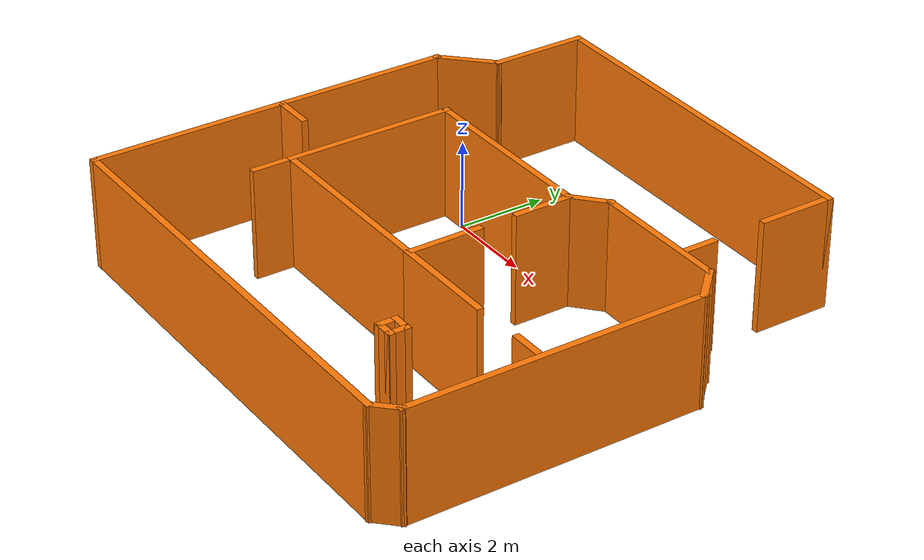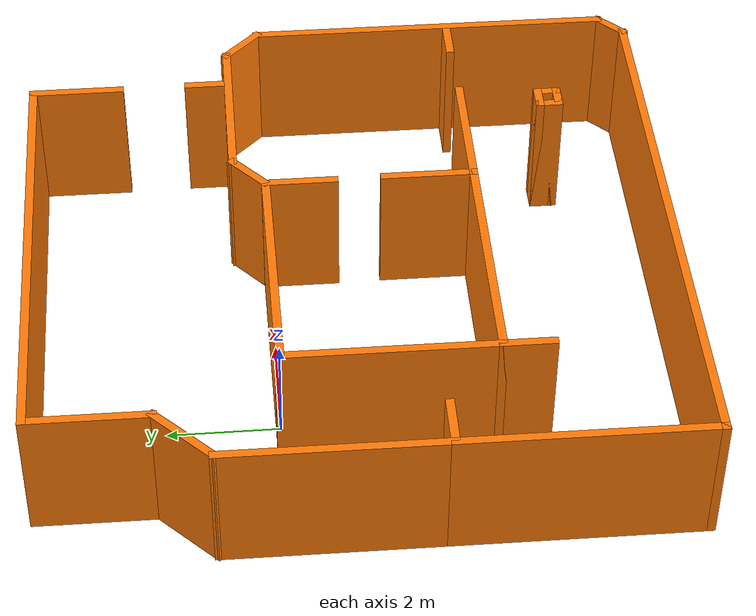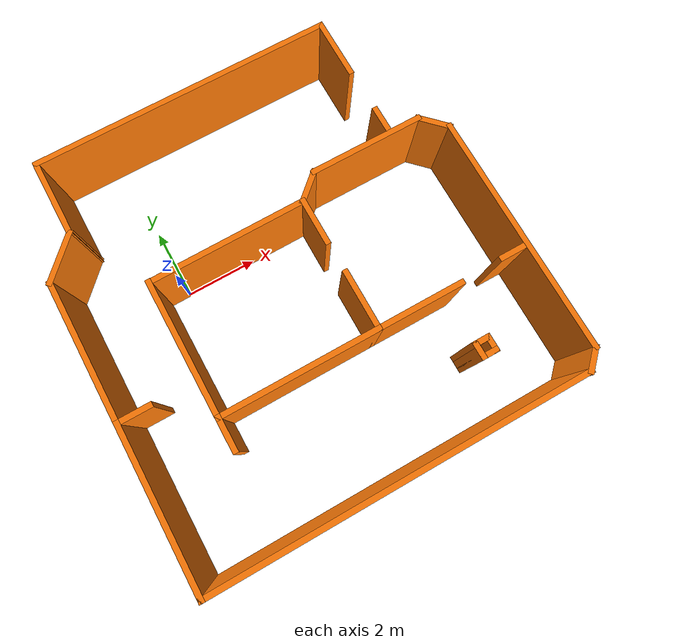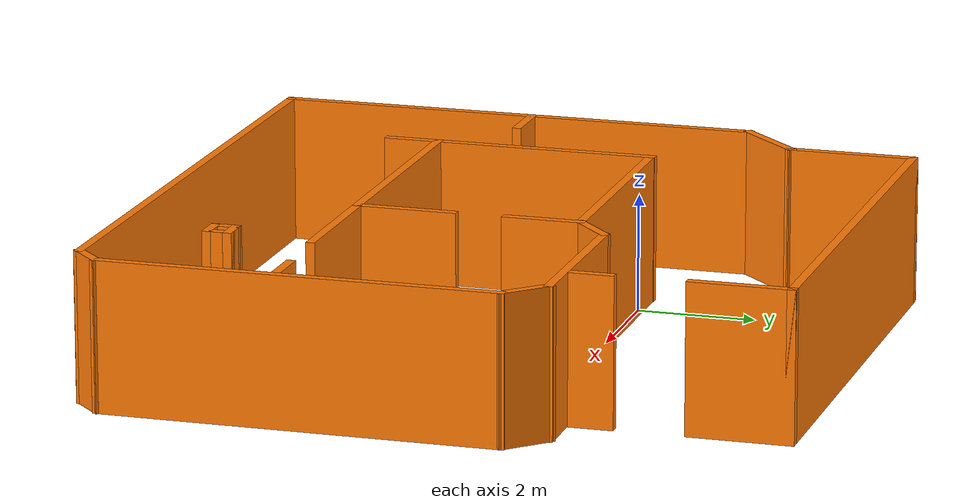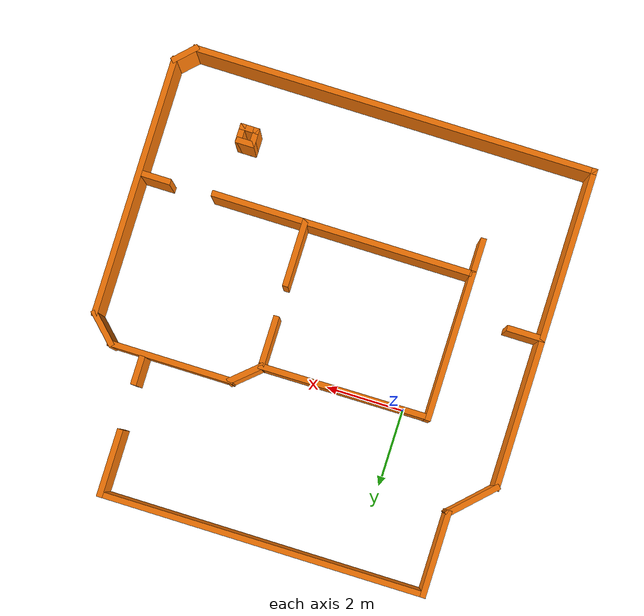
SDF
<?xml version='1.0'?>
<sdf version='1.7'>
  <model name='tinyHouse'>
    <pose>2.62495 -1.4125 0 0 -0 0</pose>
    <link name='Wall_10'>
      <collision name='Wall_10_Collision'>
        <geometry>
          <box>
            <size>0.75 0.15 2.5</size>
          </box>
        </geometry>
        <pose>0 0 1.25 0 -0 0</pose>
      </collision>
      <visual name='Wall_10_Visual'>
        <pose>0 0 1.25 0 -0 0</pose>
        <geometry>
          <box>
            <size>0.75 0.15 2.5</size>
          </box>
        </geometry>
        <material>
          <script>
            <uri>file://media/materials/scripts/gazebo.material</uri>
            <name>Gazebo/Grey</name>
          </script>
          <ambient>0.996078 0.47451 0.0196078 1</ambient>
        </material>
        <meta>
          <layer>0</layer>
        </meta>
      </visual>
      <pose>5.175 -5.39963 0 0 -0 -2.35619</pose>
    </link>
    <link name='Wall_11'>
      <collision name='Wall_11_Collision'>
        <geometry>
          <box>
            <size>10.5 0.15 2.5</size>
          </box>
        </geometry>
        <pose>0 0 1.25 0 -0 0</pose>
      </collision>
      <visual name='Wall_11_Visual'>
        <pose>0 0 1.25 0 -0 0</pose>
        <geometry>
          <box>
            <size>10.5 0.15 2.5</size>
          </box>
        </geometry>
        <material>
          <script>
            <uri>file://media/materials/scripts/gazebo.material</uri>
            <name>Gazebo/Grey</name>
          </script>
          <ambient>0.996078 0.47451 0.0196078 1</ambient>
        </material>
        <meta>
          <layer>0</layer>
        </meta>
      </visual>
      <pose>-0.212132 -5.61176 0 0 -0 3.14159</pose>
    </link>
    <link name='Wall_12'>
      <collision name='Wall_12_Collision'>
        <geometry>
          <box>
            <size>4.5 0.15 2.5</size>
          </box>
        </geometry>
        <pose>0 0 1.25 0 -0 0</pose>
      </collision>
      <visual name='Wall_12_Visual'>
        <pose>0 0 1.25 0 -0 0</pose>
        <geometry>
          <box>
            <size>4.5 0.15 2.5</size>
          </box>
        </geometry>
        <material>
          <script>
            <uri>file://media/materials/scripts/gazebo.material</uri>
            <name>Gazebo/Grey</name>
          </script>
          <ambient>0.996078 0.47451 0.0196078 1</ambient>
        </material>
        <meta>
          <layer>0</layer>
        </meta>
      </visual>
      <pose>-5.38713 -3.43676 0 0 -0 1.5708</pose>
    </link>
    <link name='Wall_13'>
      <collision name='Wall_13_Collision'>
        <geometry>
          <box>
            <size>1 0.15 2.5</size>
          </box>
        </geometry>
        <pose>0 0 1.25 0 -0 0</pose>
      </collision>
      <visual name='Wall_13_Visual'>
        <pose>0 0 1.25 0 -0 0</pose>
        <geometry>
          <box>
            <size>1 0.15 2.5</size>
          </box>
        </geometry>
        <material>
          <script>
            <uri>file://media/materials/scripts/gazebo.material</uri>
            <name>Gazebo/Grey</name>
          </script>
          <ambient>0.996078 0.47451 0.0196078 1</ambient>
        </material>
        <meta>
          <layer>0</layer>
        </meta>
      </visual>
      <pose>-4.96213 -1.26176 0 0 -0 0</pose>
    </link>
    <link name='Wall_18'>
      <collision name='Wall_18_Collision'>
        <geometry>
          <box>
            <size>0.5 0.15 2.5</size>
          </box>
        </geometry>
        <pose>0 0 1.25 0 -0 0</pose>
      </collision>
      <visual name='Wall_18_Visual'>
        <pose>0 0 1.25 0 -0 0</pose>
        <geometry>
          <box>
            <size>0.5 0.15 2.5</size>
          </box>
        </geometry>
        <material>
          <script>
            <uri>file://media/materials/scripts/gazebo.material</uri>
            <name>Gazebo/Grey</name>
          </script>
          <ambient>0.996078 0.47451 0.0196078 1</ambient>
        </material>
        <meta>
          <layer>0</layer>
        </meta>
      </visual>
      <pose>2.917 -3.91199 0 0 -0 -1.5708</pose>
    </link>
    <link name='Wall_19'>
      <collision name='Wall_19_Collision'>
        <geometry>
          <box>
            <size>0.5 0.15 2.5</size>
          </box>
        </geometry>
        <pose>0 0 1.25 0 -0 0</pose>
      </collision>
      <visual name='Wall_19_Visual'>
        <pose>0 0 1.25 0 -0 0</pose>
        <geometry>
          <box>
            <size>0.5 0.15 2.5</size>
          </box>
        </geometry>
        <material>
          <script>
            <uri>file://media/materials/scripts/gazebo.material</uri>
            <name>Gazebo/Grey</name>
          </script>
          <ambient>0.996078 0.47451 0.0196078 1</ambient>
        </material>
        <meta>
          <layer>0</layer>
        </meta>
      </visual>
      <pose>3.092 -4.08699 0 0 -0 0</pose>
    </link>
    <link name='Wall_2'>
      <collision name='Wall_2_Collision'>
        <geometry>
          <box>
            <size>4.5 0.15 2.5</size>
          </box>
        </geometry>
        <pose>0 0 1.25 0 -0 0</pose>
      </collision>
      <visual name='Wall_2_Visual'>
        <pose>0 0 1.25 0 -0 0</pose>
        <geometry>
          <box>
            <size>4.5 0.15 2.5</size>
          </box>
        </geometry>
        <material>
          <script>
            <uri>file://media/materials/scripts/gazebo.material</uri>
            <name>Gazebo/Grey</name>
          </script>
          <ambient>0.996078 0.47451 0.0196078 1</ambient>
        </material>
        <meta>
          <layer>0</layer>
        </meta>
      </visual>
      <pose>-1.08995 -2.2875 0 0 -0 0</pose>
    </link>
    <link name='Wall_20'>
      <collision name='Wall_20_Collision'>
        <geometry>
          <box>
            <size>0.5 0.15 2.5</size>
          </box>
        </geometry>
        <pose>0 0 1.25 0 -0 0</pose>
      </collision>
      <visual name='Wall_20_Visual'>
        <pose>0 0 1.25 0 -0 0</pose>
        <geometry>
          <box>
            <size>0.5 0.15 2.5</size>
          </box>
        </geometry>
        <material>
          <script>
            <uri>file://media/materials/scripts/gazebo.material</uri>
            <name>Gazebo/Grey</name>
          </script>
          <ambient>0.996078 0.47451 0.0196078 1</ambient>
        </material>
        <meta>
          <layer>0</layer>
        </meta>
      </visual>
      <pose>3.267 -3.91199 0 0 -0 1.5708</pose>
    </link>
    <link name='Wall_21'>
      <collision name='Wall_21_Collision'>
        <geometry>
          <box>
            <size>0.5 0.15 2.5</size>
          </box>
        </geometry>
        <pose>0 0 1.25 0 -0 0</pose>
      </collision>
      <visual name='Wall_21_Visual'>
        <pose>0 0 1.25 0 -0 0</pose>
        <geometry>
          <box>
            <size>0.5 0.15 2.5</size>
          </box>
        </geometry>
        <material>
          <script>
            <uri>file://media/materials/scripts/gazebo.material</uri>
            <name>Gazebo/Grey</name>
          </script>
          <ambient>0.996078 0.47451 0.0196078 1</ambient>
        </material>
        <meta>
          <layer>0</layer>
        </meta>
      </visual>
      <pose>3.092 -3.73699 0 0 -0 3.14159</pose>
    </link>
    <link name='Wall_23'>
      <collision name='Wall_23_Collision'>
        <geometry>
          <box>
            <size>1 0.15 2.5</size>
          </box>
        </geometry>
        <pose>0 0 1.25 0 -0 0</pose>
      </collision>
      <visual name='Wall_23_Visual'>
        <pose>0 0 1.25 0 -0 0</pose>
        <geometry>
          <box>
            <size>1 0.15 2.5</size>
          </box>
        </geometry>
        <material>
          <script>
            <uri>file://media/materials/scripts/gazebo.material</uri>
            <name>Gazebo/Grey</name>
          </script>
          <ambient>0.996078 0.47451 0.0196078 1</ambient>
        </material>
        <meta>
          <layer>0</layer>
        </meta>
      </visual>
      <pose>-3.26495 -2.7125 0 0 -0 -1.5708</pose>
    </link>
    <link name='Wall_25'>
      <collision name='Wall_25_Collision'>
        <geometry>
          <box>
            <size>2.5 0.15 2.5</size>
          </box>
        </geometry>
        <pose>0 0 1.25 0 -0 0</pose>
      </collision>
      <visual name='Wall_25_Visual'>
        <pose>0 0 1.25 0 -0 0</pose>
        <geometry>
          <box>
            <size>2.5 0.15 2.5</size>
          </box>
        </geometry>
        <material>
          <script>
            <uri>file://media/materials/scripts/gazebo.material</uri>
            <name>Gazebo/Grey</name>
          </script>
          <ambient>0.996078 0.47451 0.0196078 1</ambient>
        </material>
        <meta>
          <layer>0</layer>
        </meta>
      </visual>
      <pose>2.26005 -2.2875 0 0 -0 0</pose>
    </link>
    <link name='Wall_29'>
      <collision name='Wall_29_Collision'>
        <geometry>
          <box>
            <size>0.75 0.15 2.5</size>
          </box>
        </geometry>
        <pose>0 0 1.25 0 -0 0</pose>
      </collision>
      <visual name='Wall_29_Visual'>
        <pose>0 0 1.25 0 -0 0</pose>
        <geometry>
          <box>
            <size>0.75 0.15 2.5</size>
          </box>
        </geometry>
        <material>
          <script>
            <uri>file://media/materials/scripts/gazebo.material</uri>
            <name>Gazebo/Grey</name>
          </script>
          <ambient>0.996078 0.47451 0.0196078 1</ambient>
        </material>
        <meta>
          <layer>0</layer>
        </meta>
      </visual>
      <pose>4.93949 -2.2405 0 0 -0 0</pose>
    </link>
    <link name='Wall_3'>
      <collision name='Wall_3_Collision'>
        <geometry>
          <box>
            <size>1.75 0.15 2.5</size>
          </box>
        </geometry>
        <pose>0 0 1.25 0 -0 0</pose>
      </collision>
      <visual name='Wall_3_Visual'>
        <pose>0 0 1.25 0 -0 0</pose>
        <geometry>
          <box>
            <size>1.75 0.15 2.5</size>
          </box>
        </geometry>
        <material>
          <script>
            <uri>file://media/materials/scripts/gazebo.material</uri>
            <name>Gazebo/Grey</name>
          </script>
          <ambient>0.996078 0.47451 0.0196078 1</ambient>
        </material>
        <meta>
          <layer>0</layer>
        </meta>
      </visual>
      <pose>1.08505 -1.4875 0 0 -0 1.5708</pose>
    </link>
    <link name='Wall_31'>
      <collision name='Wall_31_Collision'>
        <geometry>
          <box>
            <size>4 0.15 2.5</size>
          </box>
        </geometry>
        <pose>0 0 1.25 0 -0 0</pose>
      </collision>
      <visual name='Wall_31_Visual'>
        <pose>0 0 1.25 0 -0 0</pose>
        <geometry>
          <box>
            <size>4 0.15 2.5</size>
          </box>
        </geometry>
        <material>
          <script>
            <uri>file://media/materials/scripts/gazebo.material</uri>
            <name>Gazebo/Grey</name>
          </script>
          <ambient>0.996078 0.47451 0.0196078 1</ambient>
        </material>
        <meta>
          <layer>0</layer>
        </meta>
      </visual>
      <pose>-5.38713 0.663236 0 0 -0 1.5708</pose>
    </link>
    <link name='Wall_33'>
      <collision name='Wall_33_Collision'>
        <geometry>
          <box>
            <size>1.5 0.15 2.5</size>
          </box>
        </geometry>
        <pose>0 0 1.25 0 -0 0</pose>
      </collision>
      <visual name='Wall_33_Visual'>
        <pose>0 0 1.25 0 -0 0</pose>
        <geometry>
          <box>
            <size>1.5 0.15 2.5</size>
          </box>
        </geometry>
        <material>
          <script>
            <uri>file://media/materials/scripts/gazebo.material</uri>
            <name>Gazebo/Grey</name>
          </script>
          <ambient>0.996078 0.47451 0.0196078 1</ambient>
        </material>
        <meta>
          <layer>0</layer>
        </meta>
      </visual>
      <pose>-4.90984 3.06553 0 0 -0 0.785398</pose>
    </link>
    <link name='Wall_37'>
      <collision name='Wall_37_Collision'>
        <geometry>
          <box>
            <size>3.87606 0.15 2.5</size>
          </box>
        </geometry>
        <pose>0 0 1.25 0 -0 0</pose>
      </collision>
      <visual name='Wall_37_Visual'>
        <pose>0 0 1.25 0 -0 0</pose>
        <geometry>
          <box>
            <size>3.87606 0.15 2.5</size>
          </box>
        </geometry>
        <material>
          <script>
            <uri>file://media/materials/scripts/gazebo.material</uri>
            <name>Gazebo/Grey</name>
          </script>
          <ambient>0.996078 0.47451 0.0196078 1</ambient>
        </material>
        <meta>
          <layer>0</layer>
        </meta>
      </visual>
      <pose>-3.26495 -0.424472 0 0 -0 1.5708</pose>
    </link>
    <link name='Wall_38'>
      <collision name='Wall_38_Collision'>
        <geometry>
          <box>
            <size>4.46127 0.15 2.5</size>
          </box>
        </geometry>
        <pose>0 0 1.25 0 -0 0</pose>
      </collision>
      <visual name='Wall_38_Visual'>
        <pose>0 0 1.25 0 -0 0</pose>
        <geometry>
          <box>
            <size>4.46127 0.15 2.5</size>
          </box>
        </geometry>
        <material>
          <script>
            <uri>file://media/materials/scripts/gazebo.material</uri>
            <name>Gazebo/Grey</name>
          </script>
          <ambient>0.996078 0.47451 0.0196078 1</ambient>
        </material>
        <meta>
          <layer>0</layer>
        </meta>
      </visual>
      <pose>-1.09965 1.44007 0 0 -0 0.005202</pose>
    </link>
    <link name='Wall_39'>
      <collision name='Wall_39_Collision'>
        <geometry>
          <box>
            <size>1.37606 0.15 2.5</size>
          </box>
        </geometry>
        <pose>0 0 1.25 0 -0 0</pose>
      </collision>
      <visual name='Wall_39_Visual'>
        <pose>0 0 1.25 0 -0 0</pose>
        <geometry>
          <box>
            <size>1.37606 0.15 2.5</size>
          </box>
        </geometry>
        <material>
          <script>
            <uri>file://media/materials/scripts/gazebo.material</uri>
            <name>Gazebo/Grey</name>
          </script>
          <ambient>0.996078 0.47451 0.0196078 1</ambient>
        </material>
        <meta>
          <layer>0</layer>
        </meta>
      </visual>
      <pose>1.06566 0.838258 0 0 -0 -1.5708</pose>
    </link>
    <link name='Wall_41'>
      <collision name='Wall_41_Collision'>
        <geometry>
          <box>
            <size>2.25 0.15 2.5</size>
          </box>
        </geometry>
        <pose>0 0 1.25 0 -0 0</pose>
      </collision>
      <visual name='Wall_41_Visual'>
        <pose>0 0 1.25 0 -0 0</pose>
        <geometry>
          <box>
            <size>2.25 0.15 2.5</size>
          </box>
        </geometry>
        <material>
          <script>
            <uri>file://media/materials/scripts/gazebo.material</uri>
            <name>Gazebo/Grey</name>
          </script>
          <ambient>0.996078 0.47451 0.0196078 1</ambient>
        </material>
        <meta>
          <layer>0</layer>
        </meta>
      </visual>
      <pose>-4.43254 4.59283 0 0 -0 1.5708</pose>
    </link>
    <link name='Wall_42'>
      <collision name='Wall_42_Collision'>
        <geometry>
          <box>
            <size>8.5 0.15 2.5</size>
          </box>
        </geometry>
        <pose>0 0 1.25 0 -0 0</pose>
      </collision>
      <visual name='Wall_42_Visual'>
        <pose>0 0 1.25 0 -0 0</pose>
        <geometry>
          <box>
            <size>8.5 0.15 2.5</size>
          </box>
        </geometry>
        <material>
          <script>
            <uri>file://media/materials/scripts/gazebo.material</uri>
            <name>Gazebo/Grey</name>
          </script>
          <ambient>0.996078 0.47451 0.0196078 1</ambient>
        </material>
        <meta>
          <layer>0</layer>
        </meta>
      </visual>
      <pose>-0.257538 5.64283 0 0 -0 0</pose>
    </link>
    <link name='Wall_43'>
      <collision name='Wall_43_Collision'>
        <geometry>
          <box>
            <size>1.75 0.15 2.5</size>
          </box>
        </geometry>
        <pose>0 0 1.25 0 -0 0</pose>
      </collision>
      <visual name='Wall_43_Visual'>
        <pose>0 0 1.25 0 -0 0</pose>
        <geometry>
          <box>
            <size>1.75 0.15 2.5</size>
          </box>
        </geometry>
        <material>
          <script>
            <uri>file://media/materials/scripts/gazebo.material</uri>
            <name>Gazebo/Grey</name>
          </script>
          <ambient>0.996078 0.47451 0.0196078 1</ambient>
        </material>
        <meta>
          <layer>0</layer>
        </meta>
      </visual>
      <pose>3.91746 4.84283 0 0 -0 -1.5708</pose>
    </link>
    <link name='Wall_45'>
      <collision name='Wall_45_Collision'>
        <geometry>
          <box>
            <size>0.75 0.15 2.5</size>
          </box>
        </geometry>
        <pose>0 0 1.25 0 -0 0</pose>
      </collision>
      <visual name='Wall_45_Visual'>
        <pose>0 0 1.25 0 -0 0</pose>
        <geometry>
          <box>
            <size>0.75 0.15 2.5</size>
          </box>
        </geometry>
        <material>
          <script>
            <uri>file://media/materials/scripts/gazebo.material</uri>
            <name>Gazebo/Grey</name>
          </script>
          <ambient>0.996078 0.47451 0.0196078 1</ambient>
        </material>
        <meta>
          <layer>0</layer>
        </meta>
      </visual>
      <pose>3.94312 2.45344 0 0 -0 -1.5708</pose>
    </link>
    <link name='Wall_6'>
      <collision name='Wall_6_Collision'>
        <geometry>
          <box>
            <size>0.994508 0.15 2.5</size>
          </box>
        </geometry>
        <pose>0 0 1.25 0 -0 0</pose>
      </collision>
      <visual name='Wall_6_Visual'>
        <pose>0 0 1.25 0 -0 0</pose>
        <geometry>
          <box>
            <size>0.994508 0.15 2.5</size>
          </box>
        </geometry>
        <material>
          <script>
            <uri>file://media/materials/scripts/gazebo.material</uri>
            <name>Gazebo/Grey</name>
          </script>
          <ambient>0.996078 0.47451 0.0196078 1</ambient>
        </material>
        <meta>
          <layer>0</layer>
        </meta>
      </visual>
      <pose>1.37103 1.73241 0 0 -0 0.728535</pose>
    </link>
    <link name='Wall_7'>
      <collision name='Wall_7_Collision'>
        <geometry>
          <box>
            <size>3.25 0.15 2.5</size>
          </box>
        </geometry>
        <pose>0 0 1.25 0 -0 0</pose>
      </collision>
      <visual name='Wall_7_Visual'>
        <pose>0 0 1.25 0 -0 0</pose>
        <geometry>
          <box>
            <size>3.25 0.15 2.5</size>
          </box>
        </geometry>
        <material>
          <script>
            <uri>file://media/materials/scripts/gazebo.material</uri>
            <name>Gazebo/Grey</name>
          </script>
          <ambient>0.996078 0.47451 0.0196078 1</ambient>
        </material>
        <meta>
          <layer>0</layer>
        </meta>
      </visual>
      <pose>3.23609 2.01354 0 0 -0 0</pose>
    </link>
    <link name='Wall_8'>
      <collision name='Wall_8_Collision'>
        <geometry>
          <box>
            <size>1 0.15 2.5</size>
          </box>
        </geometry>
        <pose>0 0 1.25 0 -0 0</pose>
      </collision>
      <visual name='Wall_8_Visual'>
        <pose>0 0 1.25 0 -0 0</pose>
        <geometry>
          <box>
            <size>1 0.15 2.5</size>
          </box>
        </geometry>
        <material>
          <script>
            <uri>file://media/materials/scripts/gazebo.material</uri>
            <name>Gazebo/Grey</name>
          </script>
          <ambient>0.996078 0.47451 0.0196078 1</ambient>
        </material>
        <meta>
          <layer>0</layer>
        </meta>
      </visual>
      <pose>5.08661 1.71302 0 0 -0 -0.785398</pose>
    </link>
    <link name='Wall_9'>
      <collision name='Wall_9_Collision'>
        <geometry>
          <box>
            <size>6.75 0.15 2.5</size>
          </box>
        </geometry>
        <pose>0 0 1.25 0 -0 0</pose>
      </collision>
      <visual name='Wall_9_Visual'>
        <pose>0 0 1.25 0 -0 0</pose>
        <geometry>
          <box>
            <size>6.75 0.15 2.5</size>
          </box>
        </geometry>
        <material>
          <script>
            <uri>file://media/materials/scripts/gazebo.material</uri>
            <name>Gazebo/Grey</name>
          </script>
          <ambient>0.996078 0.47451 0.0196078 1</ambient>
        </material>
        <meta>
          <layer>0</layer>
        </meta>
      </visual>
      <pose>5.38713 -1.8875 0 0 -0 -1.5708</pose>
    </link>
    <static>1</static>
  </model>
</sdf>
